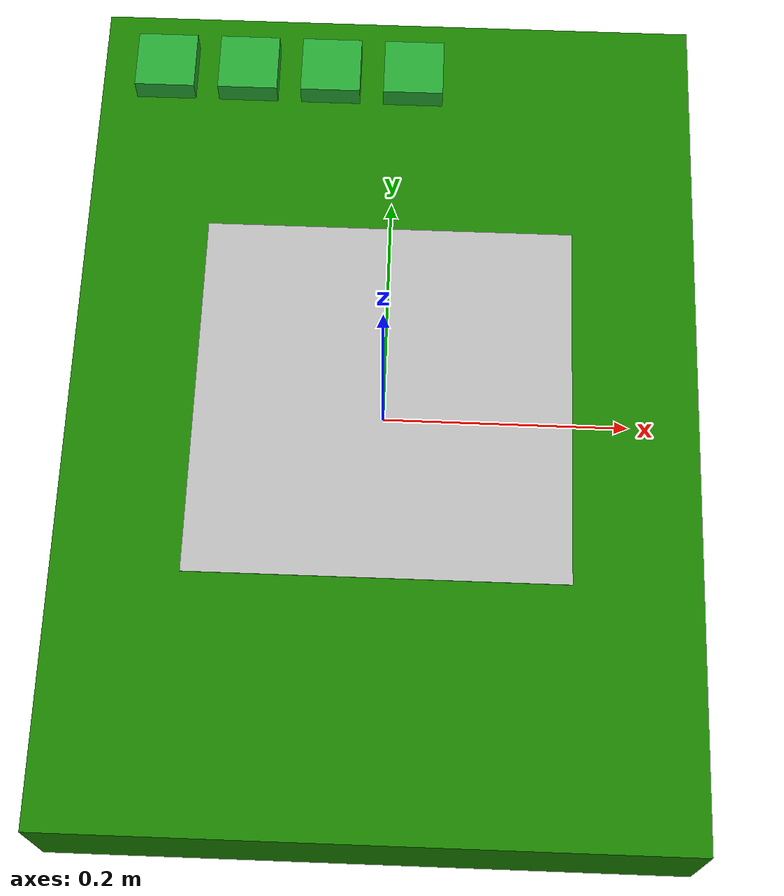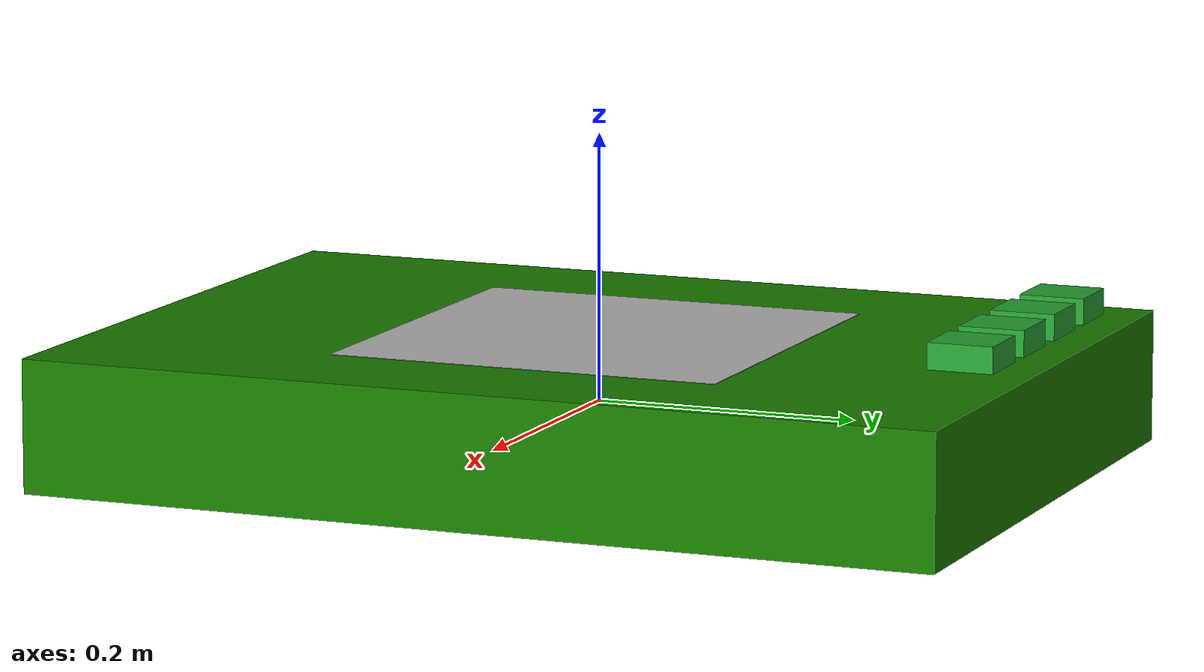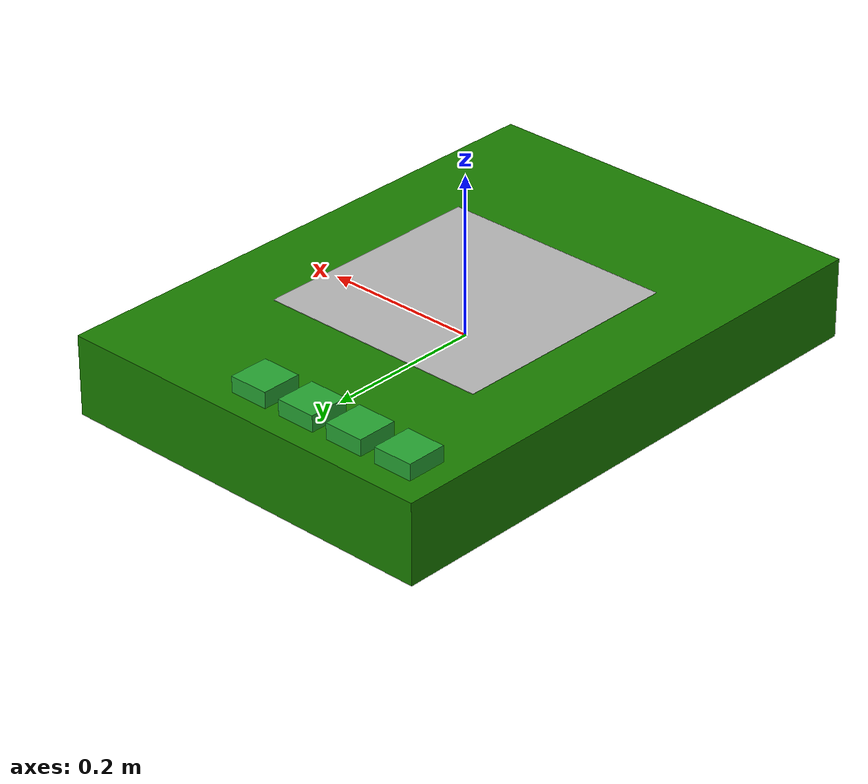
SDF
<?xml version="1.0" ?>
<sdf version="1.5">
  <model name="droneport">
    <static>false</static>
    <link name="base_link">
      <collision name="collision">
        <geometry>
          <box>
            <!--Potemkin: Dron nespadne z dronportu pri pristani -->
            <size>1 1.4 0.10</size>
          </box>
        </geometry>
        <surface>
          <friction>
            <ode>
              <mu>100</mu>
              <mu2>50</mu2>
            </ode>
          </friction>
        </surface>
      </collision>
      <visual name="visual">
        <geometry>
          <box>
            <size>0.5 0.7 0.10</size>
          </box>
        </geometry>
        <material> <!-- Wheel material -->
          <ambient>0.1 0.5 0.0 1</ambient>
          <diffuse>0.1 0.5 0.0 1</diffuse>
          <specular>0 0 0 0</specular>
          <emissive>0 0 0 0</emissive>
        </material> <!-- End wheel material -->
      </visual>
    </link>
    <link name="aruco_surface">
      <pose>0 0.0 0.05 0 0 0 </pose>
      <collision name="collision">
        <geometry>
          <box>
            <size>0.3 0.3 0.001</size>
          </box>
        </geometry>
        <surface>
          <friction>
            <ode>
              <mu>100</mu>
              <mu2>50</mu2>
            </ode>
          </friction>
        </surface>
      </collision>
      <visual name="visual2">
        <cast_shadows>true</cast_shadows>
        <geometry>
          <box>
            <size>0.3 0.3 0.001</size>
          </box>
        </geometry>
        <material>
          <script>
            <uri>model://droneport/materials/scripts/droneport.material</uri>
            <name>RepeatedTexture</name>
          </script>
        </material>
      </visual>
    </link>

    <link name="battery0">
      <pose>-0.195 0.295 0.06 0 0 0</pose>
      <collision name="collision">
        <geometry>
          <box>
            <size>0.05 0.05 0.00</size>
          </box>
        </geometry>
        <surface>
          <friction>
            <ode>
              <mu>100</mu>
              <mu2>50</mu2>
            </ode>
          </friction>
        </surface>
      </collision>
      <visual name="visual_battery0">
        <geometry>
          <box>
            <size>0.05 0.05 0.02</size>
          </box>
        </geometry>
        <material>
          <script>
            <uri>file://media/materials/scripts/gazebo.material</uri>
            <name>Gazebo/Green</name>
          </script>
        </material>
      </visual>
    </link>

    <link name="battery1">
      <pose>-0.125 0.295 0.06 0 0 0</pose>
      <collision name="collision">
        <geometry>
          <box>
            <size>0.05 0.05 0.00</size>
          </box>
        </geometry>
        <surface>
          <friction>
            <ode>
              <mu>100</mu>
              <mu2>50</mu2>
            </ode>
          </friction>
        </surface>
      </collision>
      <visual name="visual_battery1">
        <geometry>
          <box>
            <size>0.05 0.05 0.02</size>
          </box>
        </geometry>
        <material>
          <script>
            <uri>file://media/materials/scripts/gazebo.material</uri>
            <name>Gazebo/Green</name>
          </script>
        </material>
      </visual>
    </link>

    <link name="battery2">
      <pose>-0.055 0.295 0.06 0 0 0</pose>
      <collision name="collision">
        <geometry>
          <box>
            <size>0.05 0.05 0.00</size>
          </box>
        </geometry>
        <surface>
          <friction>
            <ode>
              <mu>100</mu>
              <mu2>50</mu2>
            </ode>
          </friction>
        </surface>
      </collision>
      <visual name="visual_battery2">
        <geometry>
          <box>
            <size>0.05 0.05 0.02</size>
          </box>
        </geometry>
        <material>
          <script>
            <uri>file://media/materials/scripts/gazebo.material</uri>
            <name>Gazebo/Green</name>
          </script>
        </material>
      </visual>
    </link>

    <link name="battery3">
      <pose>0.015 0.295 0.06 0 0 0</pose>
      <collision name="collision">
        <geometry>
          <box>
            <size>0.05 0.05 0.00</size>
          </box>
        </geometry>
        <surface>
          <friction>
            <ode>
              <mu>100</mu>
              <mu2>50</mu2>
            </ode>
          </friction>
        </surface>
      </collision>
      <visual name="visual_battery3">
        <geometry>
          <box>
            <size>0.05 0.05 0.02</size>
          </box>
        </geometry>
        <material>
          <script>
            <uri>file://media/materials/scripts/gazebo.material</uri>
            <name>Gazebo/Green</name>
          </script>
        </material>
      </visual>
    </link>

    <joint name="base_link_to_battery0" type="fixed">
      <parent>base_link</parent>
      <child>battery0</child>
      <pose>0 0 0 0 0 0</pose>
      <axis>
        <xyz>0 0 1</xyz>
      </axis>
    </joint>

    <joint name="base_link_to_battery1" type="fixed">
      <parent>base_link</parent>
      <child>battery1</child>
      <pose>0 0 0 0 0 0</pose>
      <axis>
        <xyz>0 0 1</xyz>
      </axis>
    </joint>

    <joint name="base_link_to_battery2" type="fixed">
      <parent>base_link</parent>
      <child>battery3</child>
      <pose>0 0 0 0 0 0</pose>
      <axis>
        <xyz>0 0 1</xyz>
      </axis>
    </joint>

    <joint name="base_link_to_battery3" type="fixed">
      <parent>base_link</parent>
      <child>battery2</child>
      <pose>0 0 0 0 0 0</pose>
      <axis>
        <xyz>0 0 1</xyz>
      </axis>
    </joint>

     <joint name="base_link_to_aruco_surface" type="fixed">
      <parent>base_link</parent>
      <child>aruco_surface</child>
      <pose>0 -0.2 0.10 0 0 0</pose>
      <axis>
        <xyz>0 0 1</xyz>
      </axis>
    </joint>

    <plugin name='droneport_plugin' filename='libgazebo_droneport_plugin.so'>
      <robotNamespace/>
      <mavlink_addr>INADDR_ANY</mavlink_addr>
      <mavlink_tcp_port>4561</mavlink_tcp_port>
      <mavlink_udp_port>14751</mavlink_udp_port>
      <TgtSystemID>202</TgtSystemID>
      <TgtComponentID>1</TgtComponentID>
      <use_tcp>0</use_tcp>
    </plugin>

    <model name='gps0'>
      <link name='link'>
        <pose>0 0 0 0 0 0</pose>
        <inertial>
          <pose>0 0 0 0 0 0</pose>
          <mass>0.01</mass>
          <inertia>
            <ixx>2.1733e-06</ixx>
            <ixy>0</ixy>
            <ixz>0</ixz>
            <iyy>2.1733e-06</iyy>
            <iyz>0</iyz>
            <izz>1.8e-07</izz>
          </inertia>
        </inertial>
        <visual name='visual'>
          <geometry>
            <cylinder>
              <radius>0.01</radius>
              <length>0.002</length>
            </cylinder>
          </geometry>
          <material>
            <script>
              <name>Gazebo/Black</name>
              <uri>__default__</uri>
            </script>
          </material>
        </visual>
        <sensor name='gps' type='gps'>
          <pose>0 0 0 0 0 0</pose>
          <update_rate>5.0</update_rate>
          <always_on>true</always_on>
          <visualize>false</visualize>
          <plugin name='gps_plugin' filename='libgazebo_gps_plugin.so'>
            <robotNamespace/>
            <gpsNoise>1</gpsNoise>
            <gpsXYRandomWalk>2.0</gpsXYRandomWalk>
            <gpsZRandomWalk>4.0</gpsZRandomWalk>
            <gpsXYNoiseDensity>0.0002</gpsXYNoiseDensity>
            <gpsZNoiseDensity>0.0004</gpsZNoiseDensity>
            <gpsVXYNoiseDensity>0.2</gpsVXYNoiseDensity>
            <gpsVZNoiseDensity>0.4</gpsVZNoiseDensity>
          </plugin>
        </sensor>
      </link>
    </model>
    <joint name='gps0_joint' type='fixed'>
      <parent>base_link</parent>
      <child>gps0::link</child>
    </joint>
  </model>
</sdf>
